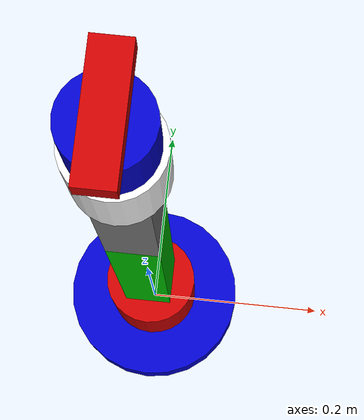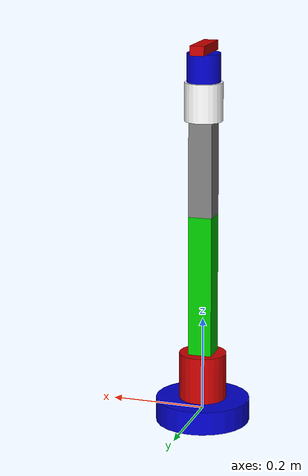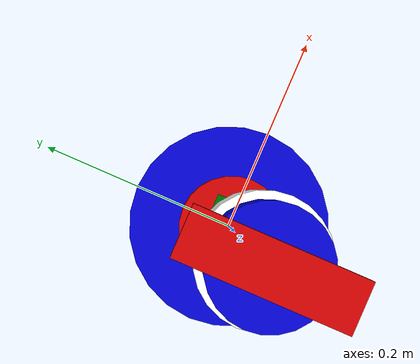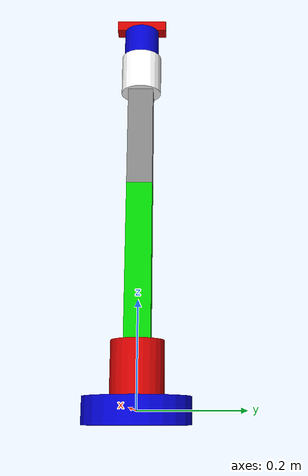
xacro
<?xml version="1.0"?>
<robot xmlns:xacro="http://www.ros.org/wiki/xacro" name="robot">
  <!-- Properties -->
  <xacro:property name="base_radius" value="0.1"/>
  <xacro:property name="base_length" value="0.05"/>
  <xacro:property name="link1_radius" value="0.05"/>
  <xacro:property name="link1_length" value="0.1"/>
  <xacro:property name="link2_size" value="0.05 0.05 0.3"/>
  <xacro:property name="link3_size" value="0.05 0.05 0.2"/>
  <xacro:property name="link4_radius" value="0.04"/>
  <xacro:property name="link4_length" value="0.08"/>
  <xacro:property name="link5_radius" value="0.035"/>
  <xacro:property name="link5_length" value="0.06"/>
  <xacro:property name="end_effector_size" value="0.03 0.1 0.02"/>

  <!-- World Frame -->
  <link name="world"/>

  <!-- Joint connecting world to base_link -->
  <joint name="world_to_base" type="fixed">
    <parent link="world"/>
    <child link="base_link"/>
    <origin xyz="0 0 0" rpy="0 0 0"/>
  </joint>

  <!-- Materials -->
  <material name="blue">
    <color rgba="0.0 0.0 0.8 1.0"/>
  </material>
  <material name="red">
    <color rgba="0.8 0.0 0.0 1.0"/>
  </material>
  <material name="green">
    <color rgba="0.0 0.8 0.0 1.0"/>
  </material>
  <material name="grey">
    <color rgba="0.5 0.5 0.5 1.0"/>
  </material>
  <material name="white">
    <color rgba="1.0 1.0 1.0 1.0"/>
  </material>

  <!-- Base Link -->
  <link name="base_link">
    <visual>
      <geometry>
        <cylinder length="${base_length}" radius="${base_radius}"/>
      </geometry>
      <material name="blue"/>
    </visual>
    <collision>
      <geometry>
        <cylinder length="${base_length}" radius="${base_radius}"/>
      </geometry>
    </collision>
    <inertial>
      <mass value="1.0"/>
      <inertia ixx="0.01" ixy="0.0" ixz="0.0" iyy="0.01" iyz="0.0" izz="0.01"/>
    </inertial>
  </link>

  <!-- Joint 1 -->
  <joint name="joint1" type="revolute">
    <parent link="base_link"/>
    <child link="link1"/>
    <origin xyz="0 0 ${base_length * 0.5}" rpy="0 0 0"/>
    <axis xyz="0 0 1"/>
    <limit lower="-3.14" upper="3.14" effort="100" velocity="1.0"/>
    <dynamics damping="0.1" friction="0.1"/>
  </joint>

  <!-- Link 1 -->
  <link name="link1">
    <visual>
      <geometry>
        <cylinder length="${link1_length}" radius="${link1_radius}"/>
      </geometry>
      <origin xyz="0 0 ${link1_length * 0.5}" rpy="0 0 0"/>
      <material name="red"/>
    </visual>
    <collision>
      <geometry>
        <cylinder length="${link1_length}" radius="${link1_radius}"/>
      </geometry>
      <origin xyz="0 0 ${link1_length * 0.5}" rpy="0 0 0"/>
    </collision>
    <inertial>
      <mass value="0.8"/>
      <origin xyz="0 0 ${link1_length * 0.5}" rpy="0 0 0"/>
      <inertia ixx="0.008" ixy="0.0" ixz="0.0" iyy="0.008" iyz="0.0" izz="0.001"/>
    </inertial>
  </link>

  <!-- Joint 2 -->
  <joint name="joint2" type="revolute">
    <parent link="link1"/>
    <child link="link2"/>
    <origin xyz="0 0 ${link1_length}" rpy="0 0 0"/>
    <axis xyz="0 1 0"/>
    <limit lower="-2.09" upper="2.09" effort="100" velocity="1.0"/>
    <dynamics damping="0.1" friction="0.1"/>
  </joint>

  <!-- Link 2 -->
  <link name="link2">
    <visual>
      <geometry>
        <box size="${link2_size}"/>
      </geometry>
      <origin xyz="0 0 0.15" rpy="0 0 0"/>
      <material name="green"/>
    </visual>
    <collision>
      <geometry>
        <box size="${link2_size}"/>
      </geometry>
      <origin xyz="0 0 0.15" rpy="0 0 0"/>
    </collision>
    <inertial>
      <mass value="0.7"/>
      <origin xyz="0 0 0.15" rpy="0 0 0"/>
      <inertia ixx="0.006" ixy="0.0" ixz="0.0" iyy="0.006" iyz="0.0" izz="0.001"/>
    </inertial>
  </link>

  <!-- Joint 3 -->
  <joint name="joint3" type="revolute">
    <parent link="link2"/>
    <child link="link3"/>
    <origin xyz="0 0 0.3" rpy="0 0 0"/>
    <axis xyz="0 1 0"/>
    <limit lower="-2.09" upper="2.09" effort="100" velocity="1.0"/>
    <dynamics damping="0.1" friction="0.1"/>
  </joint>

  <!-- Link 3 -->
  <link name="link3">
    <visual>
      <geometry>
        <box size="${link3_size}"/>
      </geometry>
      <origin xyz="0 0 0.1" rpy="0 0 0"/>
      <material name="grey"/>
    </visual>
    <collision>
      <geometry>
        <box size="${link3_size}"/>
      </geometry>
      <origin xyz="0 0 0.1" rpy="0 0 0"/>
    </collision>
    <inertial>
      <mass value="0.6"/>
      <origin xyz="0 0 0.1" rpy="0 0 0"/>
      <inertia ixx="0.005" ixy="0.0" ixz="0.0" iyy="0.005" iyz="0.0" izz="0.001"/>
    </inertial>
  </link>

  <!-- Joint 4 -->
  <joint name="joint4" type="revolute">
    <parent link="link3"/>
    <child link="link4"/>
    <origin xyz="0 0 0.2" rpy="0 0 0"/>
    <axis xyz="1 0 0"/>
    <limit lower="-3.14" upper="3.14" effort="50" velocity="1.5"/>
    <dynamics damping="0.05" friction="0.05"/>
  </joint>

  <!-- Link 4 -->
  <link name="link4">
    <visual>
      <geometry>
        <cylinder length="${link4_length}" radius="${link4_radius}"/>
      </geometry>
      <origin xyz="0 0 ${link4_length * 0.5}" rpy="0 0 0"/>
      <material name="white"/>
    </visual>
    <collision>
      <geometry>
        <cylinder length="${link4_length}" radius="${link4_radius}"/>
      </geometry>
      <origin xyz="0 0 ${link4_length * 0.5}" rpy="0 0 0"/>
    </collision>
    <inertial>
      <mass value="0.4"/>
      <origin xyz="0 0 ${link4_length * 0.5}" rpy="0 0 0"/>
      <inertia ixx="0.003" ixy="0.0" ixz="0.0" iyy="0.003" iyz="0.0" izz="0.001"/>
    </inertial>
  </link>

  <!-- Joint 5 -->
  <joint name="joint5" type="revolute">
    <parent link="link4"/>
    <child link="link5"/>
    <origin xyz="0 0 ${link4_length}" rpy="0 0 0"/>
    <axis xyz="0 1 0"/>
    <limit lower="-3.14" upper="3.14" effort="50" velocity="1.5"/>
    <dynamics damping="0.05" friction="0.05"/>
  </joint>

  <!-- Link 5 -->
  <link name="link5">
    <visual>
      <geometry>
        <cylinder length="${link5_length}" radius="${link5_radius}"/>
      </geometry>
      <origin xyz="0 0 ${link5_length * 0.5}" rpy="0 0 0"/>
      <material name="blue"/>
    </visual>
    <collision>
      <geometry>
        <cylinder length="${link5_length}" radius="${link5_radius}"/>
      </geometry>
      <origin xyz="0 0 ${link5_length * 0.5}" rpy="0 0 0"/>
    </collision>
    <inertial>
      <mass value="0.3"/>
      <origin xyz="0 0 ${link5_length * 0.5}" rpy="0 0 0"/>
      <inertia ixx="0.002" ixy="0.0" ixz="0.0" iyy="0.002" iyz="0.0" izz="0.0005"/>
    </inertial>
  </link>

  <!-- Joint 6 -->
  <joint name="joint6" type="revolute">
    <parent link="link5"/>
    <child link="end_effector"/>
    <origin xyz="0 0 ${link5_length}" rpy="0 0 0"/>
    <axis xyz="0 0 1"/>
    <limit lower="-3.14" upper="3.14" effort="50" velocity="1.5"/>
    <dynamics damping="0.05" friction="0.05"/>
  </joint>

  <!-- End Effector -->
  <link name="end_effector">
    <visual>
      <geometry>
        <box size="${end_effector_size}"/>
      </geometry>
      <origin xyz="0 0 0.01" rpy="0 0 0"/>
      <material name="red"/>
    </visual>
    <collision>
      <geometry>
        <box size="${end_effector_size}"/>
      </geometry>
      <origin xyz="0 0 0.01" rpy="0 0 0"/>
    </collision>
    <inertial>
      <mass value="0.2"/>
      <origin xyz="0 0 0.01" rpy="0 0 0"/>
      <inertia ixx="0.001" ixy="0.0" ixz="0.0" iyy="0.001" iyz="0.0" izz="0.001"/>
    </inertial>
  </link>
</robot>
